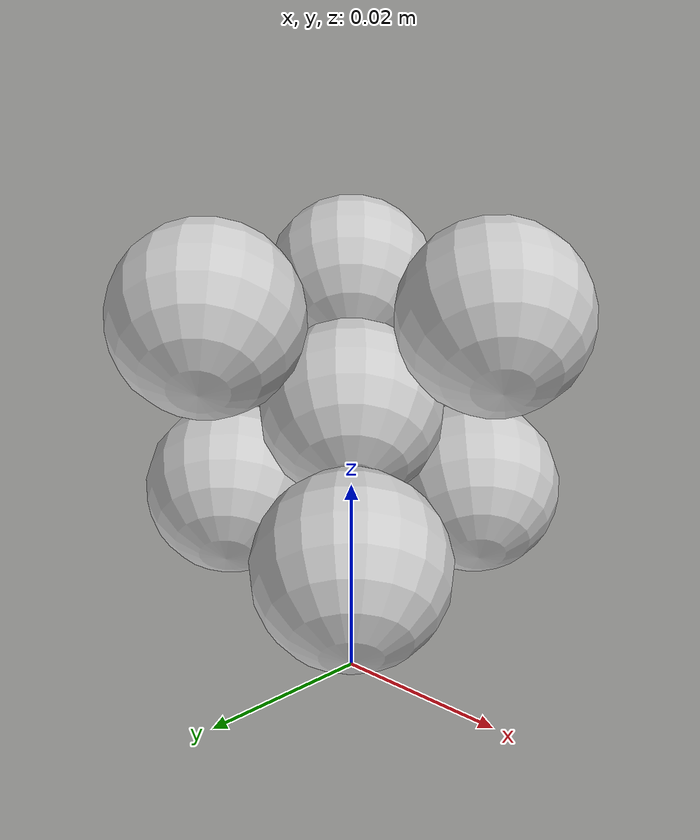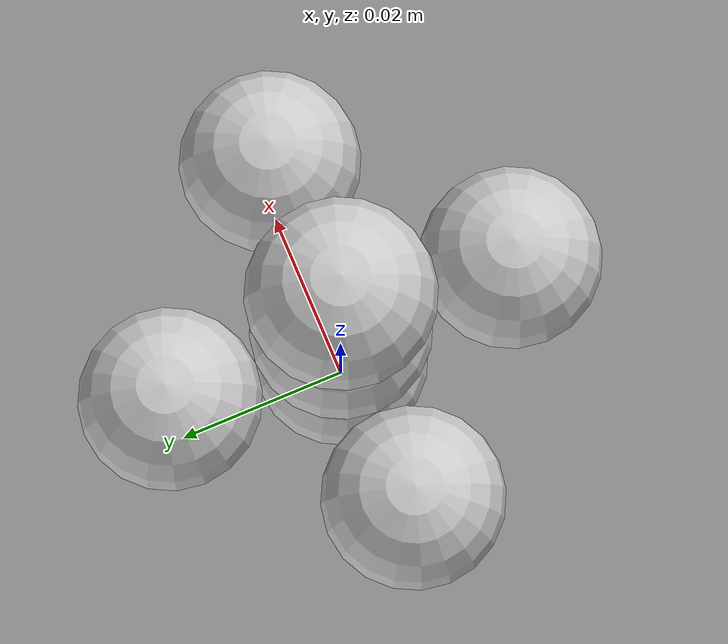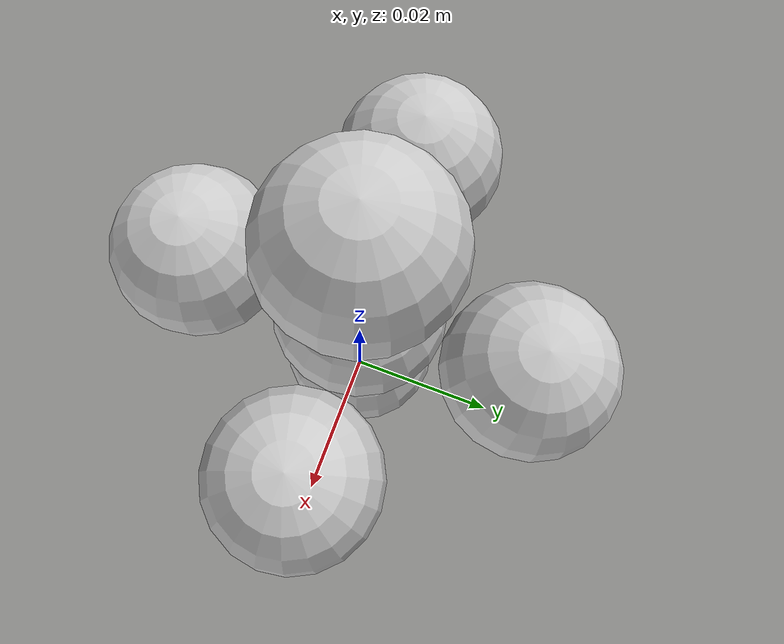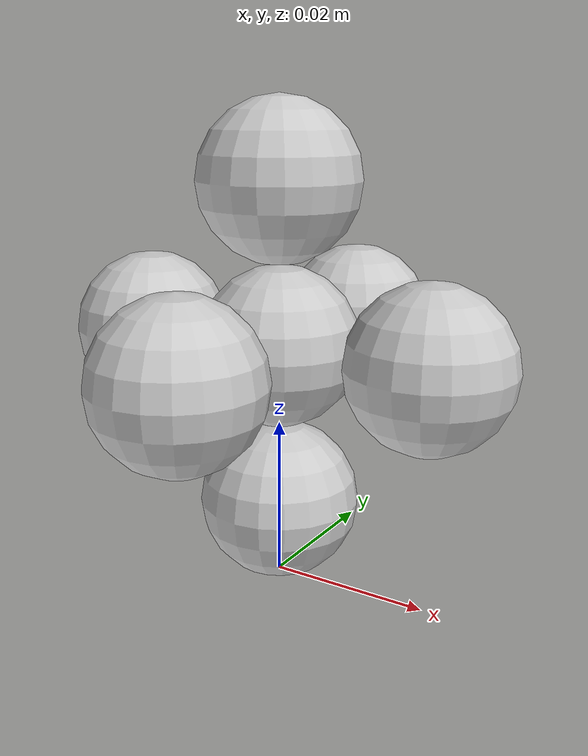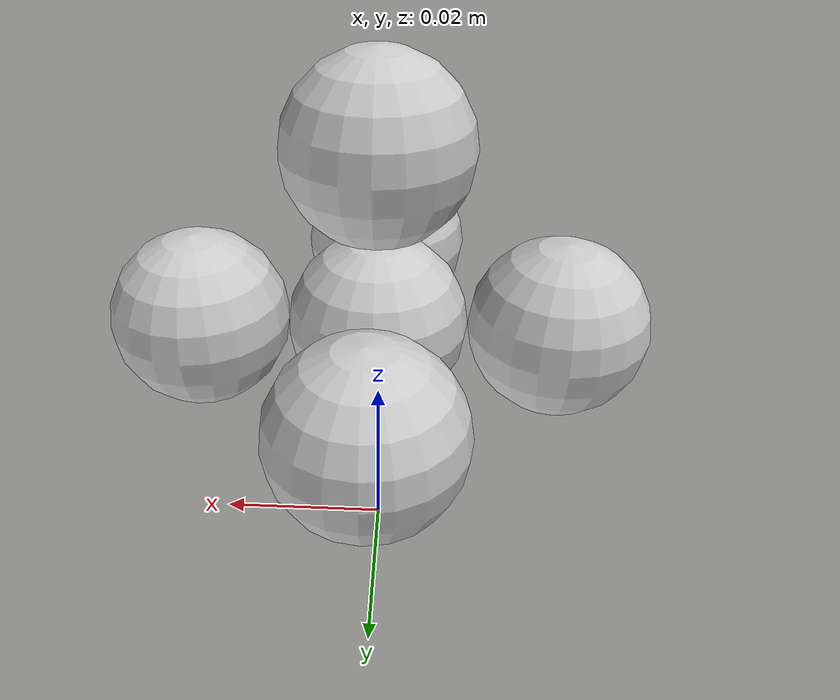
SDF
<?xml version="1.0"?>

<sdf version="1.5">
    <model name="ballcluster_icefrag">
        <self_collide>true</self_collide>
        <allow_auto_disable>true</allow_auto_disable>

        <pose>0 0 0 0 0 0</pose>

        <include>
            <name>regolith_0</name>
            <uri>model://ball_icefrag_2cm</uri>
            <pose>0 0 0 0 0 0</pose>
        </include>

        <include>
            <name>regolith_1</name>
            <uri>model://ball_icefrag_2cm</uri>
            <pose>0 0 0.02 0 0 0</pose>
        </include>

        <include>
            <name>regolith_2</name>
            <uri>model://ball_icefrag_2cm</uri>
            <pose>0.02 0 0.02 0 0 0</pose>
        </include>

        <include>
            <name>regolith_3</name>
            <uri>model://ball_icefrag_2cm</uri>
            <pose>-0.02 0 0.02 0 0 0</pose>
        </include>

        <include>
            <name>regolith_4</name>
            <uri>model://ball_icefrag_2cm</uri>
            <pose>0 0.02 0.02 0 0 0</pose>
        </include>

        <include>
            <name>regolith_5</name>
            <uri>model://ball_icefrag_2cm</uri>
            <pose>0 -0.02 0.02 0 0 0</pose>
        </include>

        <include>
            <name>regolith_6</name>
            <uri>model://ball_icefrag_2cm</uri>
            <pose>0 0 0.04 0 0 0</pose>
        </include>

    </model>
</sdf>

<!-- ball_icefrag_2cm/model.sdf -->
<sdf version="1.5">
  <model name="icefrag">
    <link name="link">

      <must_be_base_link>true</must_be_base_link>

      <pose>0 0 0.01 0 0 0</pose>
      <inertial>
        <mass>0.3769911184307752</mass>
        <!-- Set high moments to "disable" rotation -->
        <inertia>
          <ixx>1e10</ixx>
          <ixy>0</ixy>
          <ixz>0</ixz>
          <iyy>1e10</iyy>
          <iyz>0</iyz>
          <izz>1e10</izz>
        </inertia>
      </inertial>

      <collision name="collision">
        <geometry>
          <sphere>
            <radius>0.01</radius>
          </sphere>
        </geometry>
        <surface>
          <bounce>
            <restitution_coefficient>0.0</restitution_coefficient>
          </bounce>
          <contact>
            <poissons_ratio>0.36</poissons_ratio>
          </contact>
          <friction>
            <ode>
              <mu>0.58</mu>
              <mu2>0.58</mu2>
            </ode>
          </friction>
        </surface>
      </collision>

      <visual name="visual">
        <geometry>
          <sphere>
            <radius>0.01</radius>
          </sphere>
        </geometry>
        <material>
          <diffuse>0.8 0.8 0.8 1</diffuse>
          <specular>0.2 0.2 0.2 1</specular>
          <script>
            <uri>file://../../../ow_lander/materials/scripts</uri>
            <uri>file://../../../ow_lander/materials/textures</uri>
            <name>ow/lander</name>
          </script>
        </material>
      </visual>
    </link>
  </model>
</sdf>
